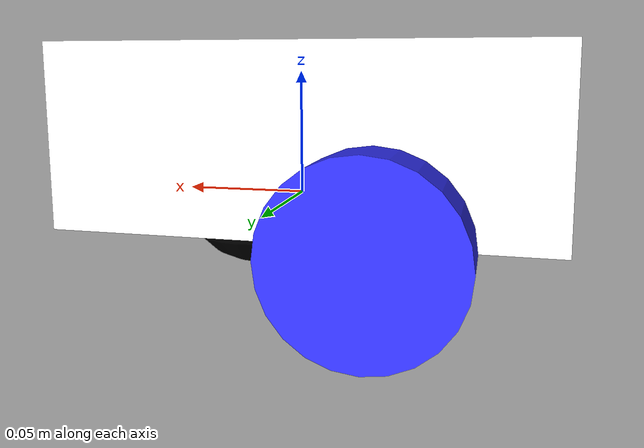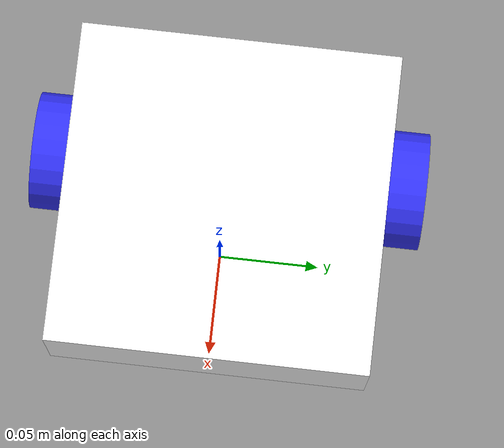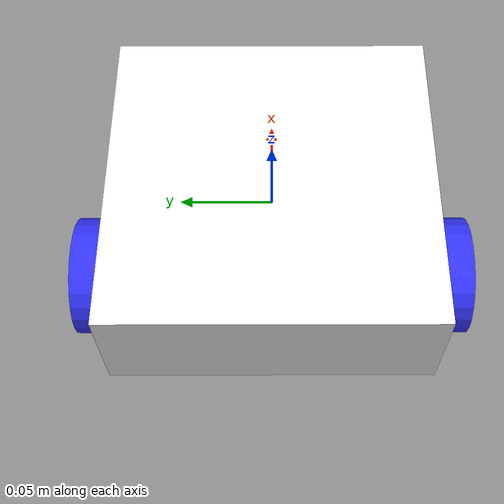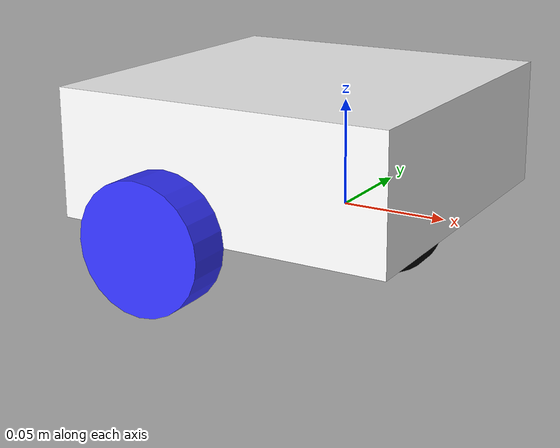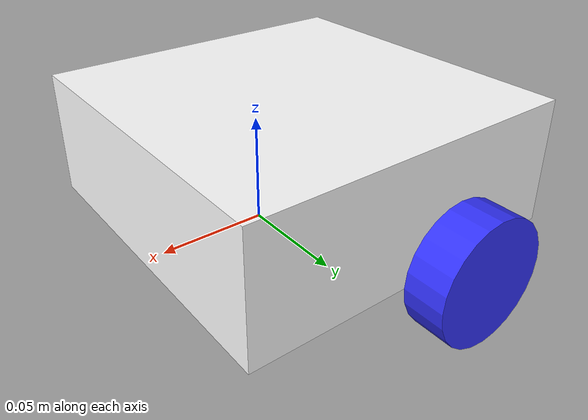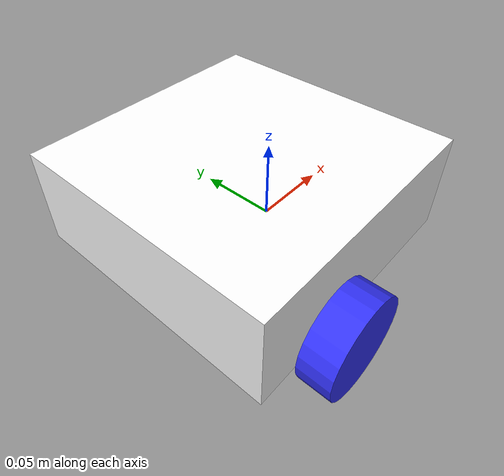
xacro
<?xml version="1.0"?>
<robot xmlns:xacro="http://www.ros.org/wiki/xacro"  name="robot">

<xacro:include filename="inertial_macros.xacro"/>

   <material name="white">
        <color rgba="1 1 1 1" />
    </material>

    <material name="orange">
        <color rgba="1 0.3 0.1 1" />
    </material>

    <material name="blue">
        <color rgba="0.2 0.2 1 1"/>
    </material>

    <material name="black">
        <color rgba="0 0 0 1" />
    </material>

<!--BASE LINK-->
    <link name="base_link">
    </link>
<!--CHASIS LINK-->
<joint name="chasis_joint" type="fixed">
    <parent link="base_link"/>
    <child link="chasis"/>
    <origin xyz="-0.1 0 0"/>
</joint>

    <link name="chasis">
        <visual>
            <origin xyz="0.08 0 0.03"/>
            <geometry>
               <box size="0.16 0.16 0.06"/>
            </geometry>
            <material name="white"/>
        </visual>
        <collision>
            <origin xyz="0.08 0 0.03"/>
            <geometry>
               <box size="0.16 0.16 0.06"/>
            </geometry>
        </collision>
        <xacro:inertial_box mass="1.2" x="0.16" y="0.3" z="0.15">
        <origin xyz="0.08 0 0.03" rpy="0 0 0"/>
        </xacro:inertial_box>
    </link>
<gazebo reference="chasis">
    <material>Gazebo/White</material>
</gazebo>
<!--LEFT WHEEL LINK-->

<joint name="left_wheel_joint" type="continuous"> <!-- continuous means it can rotate feeely unlike fixed link-->
    <parent link="base_link"/>
    <child  link="left_wheel"/>
    <origin xyz="-0.045 0.09 0" rpy="-${pi/2} 0 0"/>
    <axis xyz="0 0 1"/>

</joint>

<link name="left_wheel">
    <visual>
        <geometry>
            <cylinder radius="0.03" length="0.02" />
        </geometry>
        <material name="blue"/>
    </visual>
        <collision>
        <geometry>
            <cylinder radius="0.03" length="0.02" />
        </geometry>
    </collision>
    <xacro:inertial_cylinder mass="0.06" length="0.02" radius="0.03">
    <origin xyz ="0 0 0" rpy="0 0 0"/>
    </xacro:inertial_cylinder>
</link>
<gazebo reference="left_wheel">
    <material>Gazebo/Blue</material>
</gazebo>
<!--RIGHT WHEEL LINK-->

<joint name="right_wheel_joint" type="continuous"> <!-- continuous means it can rotate feeely unlike fixed link-->
    <parent link="base_link"/>
    <child  link="right_wheel"/>
    <origin xyz="-0.045 -0.09 0" rpy="${pi/2} 0 0"/>
    <axis xyz="0 0 -1"/>

</joint>

<link name="right_wheel">
    <visual>
        <geometry>
            <cylinder radius="0.03" length="0.02" />
        </geometry>
        <material name="blue"/>
    </visual>
        <collision>
        <geometry>
            <cylinder radius="0.03" length="0.02" />
        </geometry>
    </collision>
        <xacro:inertial_cylinder mass="0.06" length="0.02" radius="0.03">
    <origin xyz ="0 0 0" rpy="0 0 0"/>
    </xacro:inertial_cylinder>
</link>
<gazebo reference="right_wheel">
    <material>Gazebo/Blue</material>
</gazebo>
<!--CASTOR WHEEL LINK-->

<joint name="castor_wheel_joint" type="fixed">
    <parent link="chasis"/>
    <child link="castor_wheel"/>
    <origin xyz="0.12 0 0"/>
</joint>

 <link name="castor_wheel">
    <visual>
        <geometry>
            <sphere radius="0.03"/>
        </geometry>
        <material name="black"/>
    </visual>
        <collision>
        <geometry>
            <sphere radius="0.03"/>
        </geometry>
    </collision>
    <xacro:inertial_sphere mass="0.08" radius="0.03">
    <origin xyz ="0 0 0" rpy="0 0 0"/>
    </xacro:inertial_sphere>

</link>

<gazebo reference="castor_wheel">
    <material>Gazebo/Black</material>
    <mu1 value="0.0015"/>
    <mu2 value="0.0015"/>
    </gazebo>
</robot>
